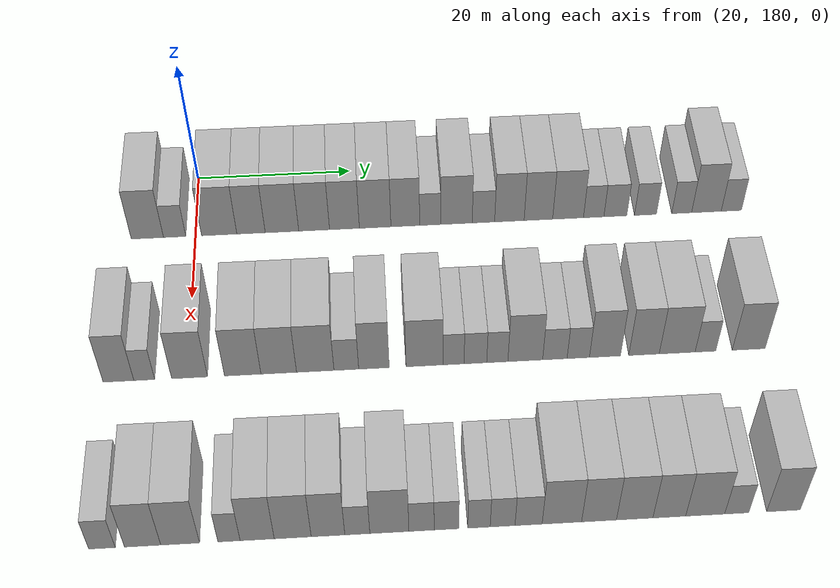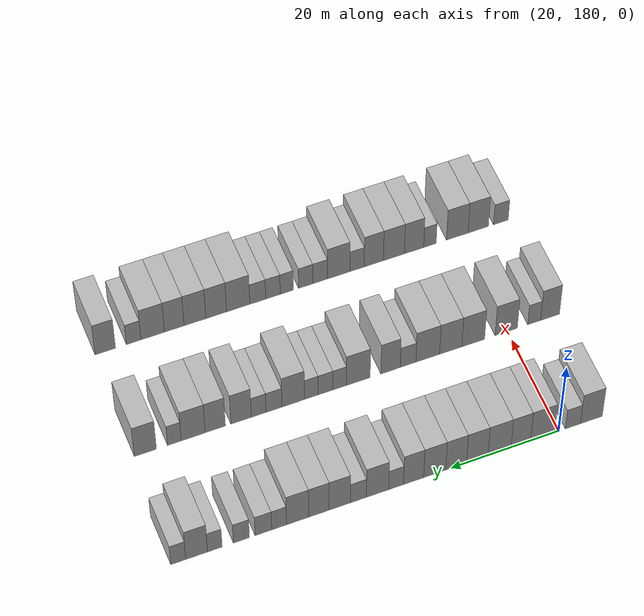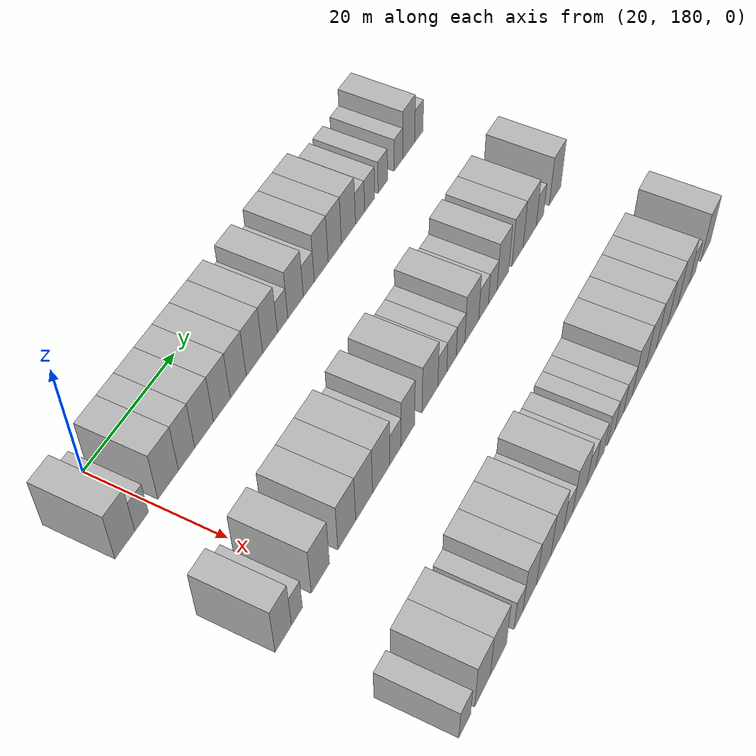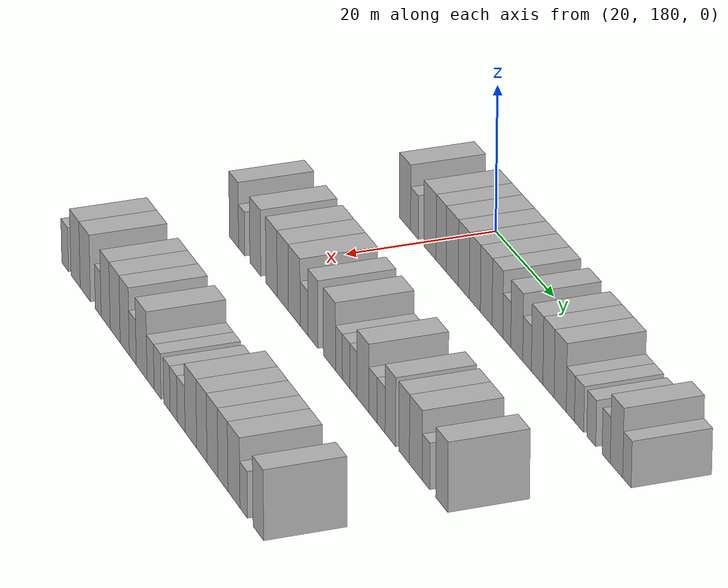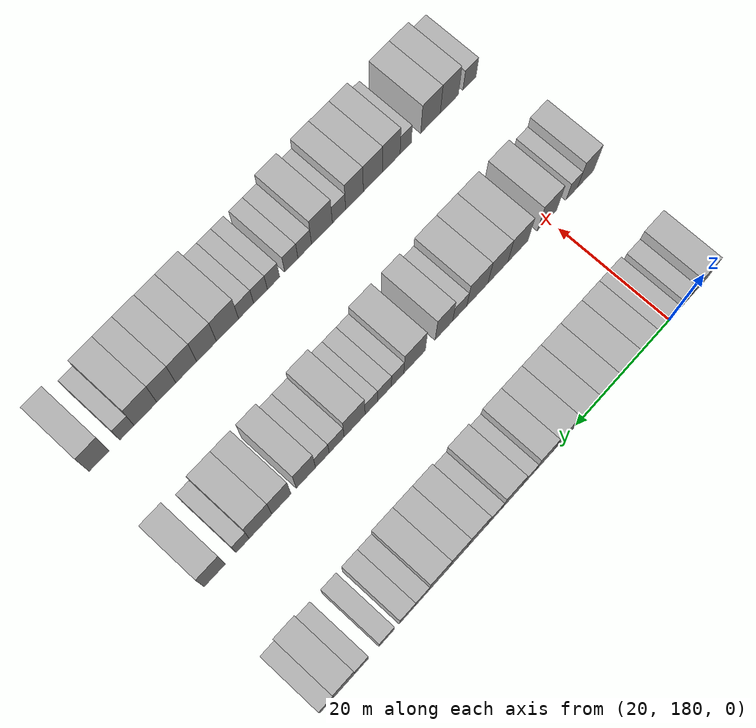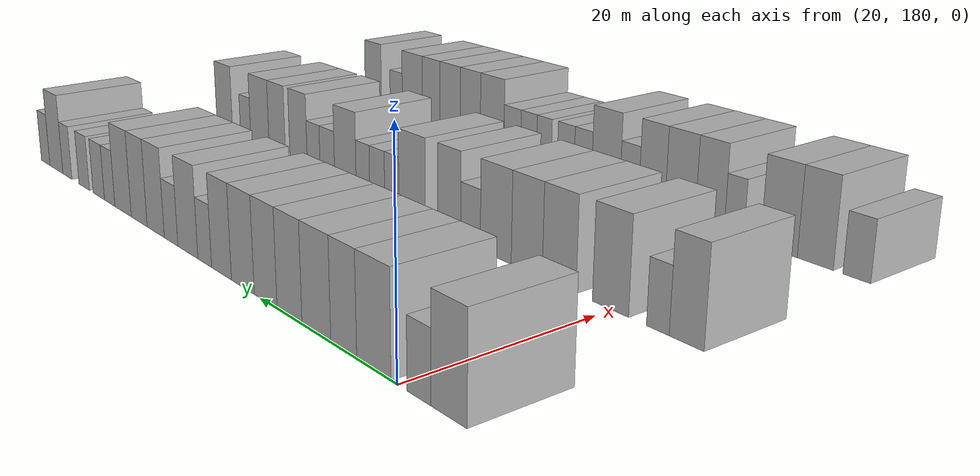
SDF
<sdf version="1.6">
 <world name="default">
  <model name="building_109">
   <static>1</static>
   <pose>25.0000 173.9081 0 0.000000 0.000000 0.000000</pose>
   <link name="link">
    <pose>0 0 4.50 0 0 0</pose>
    <collision name="collision"><geometry><box><size>10.0000 4.0946 9.0000</size></box></geometry></collision>
    <visual name="visual">
     <cast_shadows>0</cast_shadows>
     <geometry><box><size>10.0000 4.0946 9.0000</size></box></geometry>
     <material>
      <script>
       <uri>model://HANNAS_wall/materials/scripts</uri>
       <uri>model://HANNAS_wall/materials/textures</uri>
       <name>vrc/HANNAS_wall</name>
      </script>
     </material>
    </visual>
   </link>
  </model>
  <model name="building_110">
   <static>1</static>
   <pose>25.0000 177.3747 0 0.000000 0.000000 0.000000</pose>
   <link name="link">
    <pose>0 0 3.00 0 0 0</pose>
    <collision name="collision"><geometry><box><size>10.0000 2.8385 6.0000</size></box></geometry></collision>
    <visual name="visual">
     <cast_shadows>0</cast_shadows>
     <geometry><box><size>10.0000 2.8385 6.0000</size></box></geometry>
     <material>
      <script>
       <uri>model://HANNAS_wall/materials/scripts</uri>
       <uri>model://HANNAS_wall/materials/textures</uri>
       <name>vrc/HANNAS_wall</name>
      </script>
     </material>
    </visual>
   </link>
  </model>
  <model name="building_111">
   <static>1</static>
   <pose>25.0000 183.0417 0 0.000000 0.000000 0.000000</pose>
   <link name="link">
    <pose>0 0 4.50 0 0 0</pose>
    <collision name="collision"><geometry><box><size>10.0000 4.4956 9.0000</size></box></geometry></collision>
    <visual name="visual">
     <cast_shadows>0</cast_shadows>
     <geometry><box><size>10.0000 4.4956 9.0000</size></box></geometry>
     <material>
      <script>
       <uri>model://HANNAS_wall/materials/scripts</uri>
       <uri>model://HANNAS_wall/materials/textures</uri>
       <name>vrc/HANNAS_wall</name>
      </script>
     </material>
    </visual>
   </link>
  </model>
  <model name="building_112">
   <static>1</static>
   <pose>25.0000 187.1016 0 0.000000 0.000000 0.000000</pose>
   <link name="link">
    <pose>0 0 4.50 0 0 0</pose>
    <collision name="collision"><geometry><box><size>10.0000 3.6242 9.0000</size></box></geometry></collision>
    <visual name="visual">
     <cast_shadows>0</cast_shadows>
     <geometry><box><size>10.0000 3.6242 9.0000</size></box></geometry>
     <material>
      <script>
       <uri>model://HANNAS_wall/materials/scripts</uri>
       <uri>model://HANNAS_wall/materials/textures</uri>
       <name>vrc/HANNAS_wall</name>
      </script>
     </material>
    </visual>
   </link>
  </model>
  <model name="building_113">
   <static>1</static>
   <pose>25.0000 191.0574 0 0.000000 0.000000 0.000000</pose>
   <link name="link">
    <pose>0 0 4.50 0 0 0</pose>
    <collision name="collision"><geometry><box><size>10.0000 4.2874 9.0000</size></box></geometry></collision>
    <visual name="visual">
     <cast_shadows>0</cast_shadows>
     <geometry><box><size>10.0000 4.2874 9.0000</size></box></geometry>
     <material>
      <script>
       <uri>model://HANNAS_wall/materials/scripts</uri>
       <uri>model://HANNAS_wall/materials/textures</uri>
       <name>vrc/HANNAS_wall</name>
      </script>
     </material>
    </visual>
   </link>
  </model>
  <model name="building_114">
   <static>1</static>
   <pose>25.0000 195.1754 0 0.000000 0.000000 0.000000</pose>
   <link name="link">
    <pose>0 0 4.50 0 0 0</pose>
    <collision name="collision"><geometry><box><size>10.0000 3.9486 9.0000</size></box></geometry></collision>
    <visual name="visual">
     <cast_shadows>0</cast_shadows>
     <geometry><box><size>10.0000 3.9486 9.0000</size></box></geometry>
     <material>
      <script>
       <uri>model://HANNAS_wall/materials/scripts</uri>
       <uri>model://HANNAS_wall/materials/textures</uri>
       <name>vrc/HANNAS_wall</name>
      </script>
     </material>
    </visual>
   </link>
  </model>
  <model name="building_115">
   <static>1</static>
   <pose>25.0000 199.0619 0 0.000000 0.000000 0.000000</pose>
   <link name="link">
    <pose>0 0 4.50 0 0 0</pose>
    <collision name="collision"><geometry><box><size>10.0000 3.8245 9.0000</size></box></geometry></collision>
    <visual name="visual">
     <cast_shadows>0</cast_shadows>
     <geometry><box><size>10.0000 3.8245 9.0000</size></box></geometry>
     <material>
      <script>
       <uri>model://HANNAS_wall/materials/scripts</uri>
       <uri>model://HANNAS_wall/materials/textures</uri>
       <name>vrc/HANNAS_wall</name>
      </script>
     </material>
    </visual>
   </link>
  </model>
  <model name="building_116">
   <static>1</static>
   <pose>25.0000 202.9999 0 0.000000 0.000000 0.000000</pose>
   <link name="link">
    <pose>0 0 4.50 0 0 0</pose>
    <collision name="collision"><geometry><box><size>10.0000 4.0514 9.0000</size></box></geometry></collision>
    <visual name="visual">
     <cast_shadows>0</cast_shadows>
     <geometry><box><size>10.0000 4.0514 9.0000</size></box></geometry>
     <material>
      <script>
       <uri>model://HANNAS_wall/materials/scripts</uri>
       <uri>model://HANNAS_wall/materials/textures</uri>
       <name>vrc/HANNAS_wall</name>
      </script>
     </material>
    </visual>
   </link>
  </model>
  <model name="building_117">
   <static>1</static>
   <pose>25.0000 206.8756 0 0.000000 0.000000 0.000000</pose>
   <link name="link">
    <pose>0 0 4.50 0 0 0</pose>
    <collision name="collision"><geometry><box><size>10.0000 3.7001 9.0000</size></box></geometry></collision>
    <visual name="visual">
     <cast_shadows>0</cast_shadows>
     <geometry><box><size>10.0000 3.7001 9.0000</size></box></geometry>
     <material>
      <script>
       <uri>model://HANNAS_wall/materials/scripts</uri>
       <uri>model://HANNAS_wall/materials/textures</uri>
       <name>vrc/HANNAS_wall</name>
      </script>
     </material>
    </visual>
   </link>
  </model>
  <model name="building_118">
   <static>1</static>
   <pose>25.0000 210.0729 0 0.000000 0.000000 0.000000</pose>
   <link name="link">
    <pose>0 0 3.00 0 0 0</pose>
    <collision name="collision"><geometry><box><size>10.0000 2.6945 6.0000</size></box></geometry></collision>
    <visual name="visual">
     <cast_shadows>0</cast_shadows>
     <geometry><box><size>10.0000 2.6945 6.0000</size></box></geometry>
     <material>
      <script>
       <uri>model://HANNAS_wall/materials/scripts</uri>
       <uri>model://HANNAS_wall/materials/textures</uri>
       <name>vrc/HANNAS_wall</name>
      </script>
     </material>
    </visual>
   </link>
  </model>
  <model name="building_119">
   <static>1</static>
   <pose>25.0000 213.4581 0 0.000000 0.000000 0.000000</pose>
   <link name="link">
    <pose>0 0 4.50 0 0 0</pose>
    <collision name="collision"><geometry><box><size>10.0000 4.0759 9.0000</size></box></geometry></collision>
    <visual name="visual">
     <cast_shadows>0</cast_shadows>
     <geometry><box><size>10.0000 4.0759 9.0000</size></box></geometry>
     <material>
      <script>
       <uri>model://HANNAS_wall/materials/scripts</uri>
       <uri>model://HANNAS_wall/materials/textures</uri>
       <name>vrc/HANNAS_wall</name>
      </script>
     </material>
    </visual>
   </link>
  </model>
  <model name="building_120">
   <static>1</static>
   <pose>25.0000 216.9453 0 0.000000 0.000000 0.000000</pose>
   <link name="link">
    <pose>0 0 3.00 0 0 0</pose>
    <collision name="collision"><geometry><box><size>10.0000 2.8984 6.0000</size></box></geometry></collision>
    <visual name="visual">
     <cast_shadows>0</cast_shadows>
     <geometry><box><size>10.0000 2.8984 6.0000</size></box></geometry>
     <material>
      <script>
       <uri>model://HANNAS_wall/materials/scripts</uri>
       <uri>model://HANNAS_wall/materials/textures</uri>
       <name>vrc/HANNAS_wall</name>
      </script>
     </material>
    </visual>
   </link>
  </model>
  <model name="building_121">
   <static>1</static>
   <pose>25.0000 220.3004 0 0.000000 0.000000 0.000000</pose>
   <link name="link">
    <pose>0 0 4.50 0 0 0</pose>
    <collision name="collision"><geometry><box><size>10.0000 3.8117 9.0000</size></box></geometry></collision>
    <visual name="visual">
     <cast_shadows>0</cast_shadows>
     <geometry><box><size>10.0000 3.8117 9.0000</size></box></geometry>
     <material>
      <script>
       <uri>model://HANNAS_wall/materials/scripts</uri>
       <uri>model://HANNAS_wall/materials/textures</uri>
       <name>vrc/HANNAS_wall</name>
      </script>
     </material>
    </visual>
   </link>
  </model>
  <model name="building_122">
   <static>1</static>
   <pose>25.0000 224.0558 0 0.000000 0.000000 0.000000</pose>
   <link name="link">
    <pose>0 0 4.50 0 0 0</pose>
    <collision name="collision"><geometry><box><size>10.0000 3.6991 9.0000</size></box></geometry></collision>
    <visual name="visual">
     <cast_shadows>0</cast_shadows>
     <geometry><box><size>10.0000 3.6991 9.0000</size></box></geometry>
     <material>
      <script>
       <uri>model://HANNAS_wall/materials/scripts</uri>
       <uri>model://HANNAS_wall/materials/textures</uri>
       <name>vrc/HANNAS_wall</name>
      </script>
     </material>
    </visual>
   </link>
  </model>
  <model name="building_123">
   <static>1</static>
   <pose>25.0000 227.9066 0 0.000000 0.000000 0.000000</pose>
   <link name="link">
    <pose>0 0 4.50 0 0 0</pose>
    <collision name="collision"><geometry><box><size>10.0000 4.0026 9.0000</size></box></geometry></collision>
    <visual name="visual">
     <cast_shadows>0</cast_shadows>
     <geometry><box><size>10.0000 4.0026 9.0000</size></box></geometry>
     <material>
      <script>
       <uri>model://HANNAS_wall/materials/scripts</uri>
       <uri>model://HANNAS_wall/materials/textures</uri>
       <name>vrc/HANNAS_wall</name>
      </script>
     </material>
    </visual>
   </link>
  </model>
  <model name="building_124">
   <static>1</static>
   <pose>25.0000 231.2345 0 0.000000 0.000000 0.000000</pose>
   <link name="link">
    <pose>0 0 3.00 0 0 0</pose>
    <collision name="collision"><geometry><box><size>10.0000 2.6533 6.0000</size></box></geometry></collision>
    <visual name="visual">
     <cast_shadows>0</cast_shadows>
     <geometry><box><size>10.0000 2.6533 6.0000</size></box></geometry>
     <material>
      <script>
       <uri>model://HANNAS_wall/materials/scripts</uri>
       <uri>model://HANNAS_wall/materials/textures</uri>
       <name>vrc/HANNAS_wall</name>
      </script>
     </material>
    </visual>
   </link>
  </model>
  <model name="building_125">
   <static>1</static>
   <pose>25.0000 234.0508 0 0.000000 0.000000 0.000000</pose>
   <link name="link">
    <pose>0 0 3.00 0 0 0</pose>
    <collision name="collision"><geometry><box><size>10.0000 2.9793 6.0000</size></box></geometry></collision>
    <visual name="visual">
     <cast_shadows>0</cast_shadows>
     <geometry><box><size>10.0000 2.9793 6.0000</size></box></geometry>
     <material>
      <script>
       <uri>model://HANNAS_wall/materials/scripts</uri>
       <uri>model://HANNAS_wall/materials/textures</uri>
       <name>vrc/HANNAS_wall</name>
      </script>
     </material>
    </visual>
   </link>
  </model>
  <model name="building_126">
   <static>1</static>
   <pose>25.0000 237.9720 0 0.000000 0.000000 0.000000</pose>
   <link name="link">
    <pose>0 0 3.00 0 0 0</pose>
    <collision name="collision"><geometry><box><size>10.0000 2.8631 6.0000</size></box></geometry></collision>
    <visual name="visual">
     <cast_shadows>0</cast_shadows>
     <geometry><box><size>10.0000 2.8631 6.0000</size></box></geometry>
     <material>
      <script>
       <uri>model://HANNAS_wall/materials/scripts</uri>
       <uri>model://HANNAS_wall/materials/textures</uri>
       <name>vrc/HANNAS_wall</name>
      </script>
     </material>
    </visual>
   </link>
  </model>
  <model name="building_127">
   <static>1</static>
   <pose>25.0000 242.7016 0 0.000000 0.000000 0.000000</pose>
   <link name="link">
    <pose>0 0 3.00 0 0 0</pose>
    <collision name="collision"><geometry><box><size>10.0000 2.5960 6.0000</size></box></geometry></collision>
    <visual name="visual">
     <cast_shadows>0</cast_shadows>
     <geometry><box><size>10.0000 2.5960 6.0000</size></box></geometry>
     <material>
      <script>
       <uri>model://HANNAS_wall/materials/scripts</uri>
       <uri>model://HANNAS_wall/materials/textures</uri>
       <name>vrc/HANNAS_wall</name>
      </script>
     </material>
    </visual>
   </link>
  </model>
  <model name="building_128">
   <static>1</static>
   <pose>25.0000 245.9337 0 0.000000 0.000000 0.000000</pose>
   <link name="link">
    <pose>0 0 4.50 0 0 0</pose>
    <collision name="collision"><geometry><box><size>10.0000 3.8683 9.0000</size></box></geometry></collision>
    <visual name="visual">
     <cast_shadows>0</cast_shadows>
     <geometry><box><size>10.0000 3.8683 9.0000</size></box></geometry>
     <material>
      <script>
       <uri>model://HANNAS_wall/materials/scripts</uri>
       <uri>model://HANNAS_wall/materials/textures</uri>
       <name>vrc/HANNAS_wall</name>
      </script>
     </material>
    </visual>
   </link>
  </model>
  <model name="building_129">
   <static>1</static>
   <pose>25.0000 249.1870 0 0.000000 0.000000 0.000000</pose>
   <link name="link">
    <pose>0 0 3.00 0 0 0</pose>
    <collision name="collision"><geometry><box><size>10.0000 2.6382 6.0000</size></box></geometry></collision>
    <visual name="visual">
     <cast_shadows>0</cast_shadows>
     <geometry><box><size>10.0000 2.6382 6.0000</size></box></geometry>
     <material>
      <script>
       <uri>model://HANNAS_wall/materials/scripts</uri>
       <uri>model://HANNAS_wall/materials/textures</uri>
       <name>vrc/HANNAS_wall</name>
      </script>
     </material>
    </visual>
   </link>
  </model>
  <model name="building_231">
   <static>1</static>
   <pose>47.0000 171.8730 0 0.000000 0.000000 0.000000</pose>
   <link name="link">
    <pose>0 0 4.50 0 0 0</pose>
    <collision name="collision"><geometry><box><size>10.0000 3.6112 9.0000</size></box></geometry></collision>
    <visual name="visual">
     <cast_shadows>0</cast_shadows>
     <geometry><box><size>10.0000 3.6112 9.0000</size></box></geometry>
     <material>
      <script>
       <uri>model://HANNAS_wall/materials/scripts</uri>
       <uri>model://HANNAS_wall/materials/textures</uri>
       <name>vrc/HANNAS_wall</name>
      </script>
     </material>
    </visual>
   </link>
  </model>
  <model name="building_232">
   <static>1</static>
   <pose>47.0000 174.9050 0 0.000000 0.000000 0.000000</pose>
   <link name="link">
    <pose>0 0 3.00 0 0 0</pose>
    <collision name="collision"><geometry><box><size>10.0000 2.4529 6.0000</size></box></geometry></collision>
    <visual name="visual">
     <cast_shadows>0</cast_shadows>
     <geometry><box><size>10.0000 2.4529 6.0000</size></box></geometry>
     <material>
      <script>
       <uri>model://HANNAS_wall/materials/scripts</uri>
       <uri>model://HANNAS_wall/materials/textures</uri>
       <name>vrc/HANNAS_wall</name>
      </script>
     </material>
    </visual>
   </link>
  </model>
  <model name="building_233">
   <static>1</static>
   <pose>47.0000 180.2463 0 0.000000 0.000000 0.000000</pose>
   <link name="link">
    <pose>0 0 4.50 0 0 0</pose>
    <collision name="collision"><geometry><box><size>10.0000 4.2296 9.0000</size></box></geometry></collision>
    <visual name="visual">
     <cast_shadows>0</cast_shadows>
     <geometry><box><size>10.0000 4.2296 9.0000</size></box></geometry>
     <material>
      <script>
       <uri>model://HANNAS_wall/materials/scripts</uri>
       <uri>model://HANNAS_wall/materials/textures</uri>
       <name>vrc/HANNAS_wall</name>
      </script>
     </material>
    </visual>
   </link>
  </model>
  <model name="building_234">
   <static>1</static>
   <pose>47.0000 186.5187 0 0.000000 0.000000 0.000000</pose>
   <link name="link">
    <pose>0 0 4.50 0 0 0</pose>
    <collision name="collision"><geometry><box><size>10.0000 4.3152 9.0000</size></box></geometry></collision>
    <visual name="visual">
     <cast_shadows>0</cast_shadows>
     <geometry><box><size>10.0000 4.3152 9.0000</size></box></geometry>
     <material>
      <script>
       <uri>model://HANNAS_wall/materials/scripts</uri>
       <uri>model://HANNAS_wall/materials/textures</uri>
       <name>vrc/HANNAS_wall</name>
      </script>
     </material>
    </visual>
   </link>
  </model>
  <model name="building_235">
   <static>1</static>
   <pose>47.0000 190.7819 0 0.000000 0.000000 0.000000</pose>
   <link name="link">
    <pose>0 0 4.50 0 0 0</pose>
    <collision name="collision"><geometry><box><size>10.0000 4.2111 9.0000</size></box></geometry></collision>
    <visual name="visual">
     <cast_shadows>0</cast_shadows>
     <geometry><box><size>10.0000 4.2111 9.0000</size></box></geometry>
     <material>
      <script>
       <uri>model://HANNAS_wall/materials/scripts</uri>
       <uri>model://HANNAS_wall/materials/textures</uri>
       <name>vrc/HANNAS_wall</name>
      </script>
     </material>
    </visual>
   </link>
  </model>
  <model name="building_236">
   <static>1</static>
   <pose>47.0000 195.1106 0 0.000000 0.000000 0.000000</pose>
   <link name="link">
    <pose>0 0 4.50 0 0 0</pose>
    <collision name="collision"><geometry><box><size>10.0000 4.4464 9.0000</size></box></geometry></collision>
    <visual name="visual">
     <cast_shadows>0</cast_shadows>
     <geometry><box><size>10.0000 4.4464 9.0000</size></box></geometry>
     <material>
      <script>
       <uri>model://HANNAS_wall/materials/scripts</uri>
       <uri>model://HANNAS_wall/materials/textures</uri>
       <name>vrc/HANNAS_wall</name>
      </script>
     </material>
    </visual>
   </link>
  </model>
  <model name="building_237">
   <static>1</static>
   <pose>47.0000 198.8023 0 0.000000 0.000000 0.000000</pose>
   <link name="link">
    <pose>0 0 3.00 0 0 0</pose>
    <collision name="collision"><geometry><box><size>10.0000 2.9369 6.0000</size></box></geometry></collision>
    <visual name="visual">
     <cast_shadows>0</cast_shadows>
     <geometry><box><size>10.0000 2.9369 6.0000</size></box></geometry>
     <material>
      <script>
       <uri>model://HANNAS_wall/materials/scripts</uri>
       <uri>model://HANNAS_wall/materials/textures</uri>
       <name>vrc/HANNAS_wall</name>
      </script>
     </material>
    </visual>
   </link>
  </model>
  <model name="building_238">
   <static>1</static>
   <pose>47.0000 202.0875 0 0.000000 0.000000 0.000000</pose>
   <link name="link">
    <pose>0 0 4.50 0 0 0</pose>
    <collision name="collision"><geometry><box><size>10.0000 3.6337 9.0000</size></box></geometry></collision>
    <visual name="visual">
     <cast_shadows>0</cast_shadows>
     <geometry><box><size>10.0000 3.6337 9.0000</size></box></geometry>
     <material>
      <script>
       <uri>model://HANNAS_wall/materials/scripts</uri>
       <uri>model://HANNAS_wall/materials/textures</uri>
       <name>vrc/HANNAS_wall</name>
      </script>
     </material>
    </visual>
   </link>
  </model>
  <model name="building_239">
   <static>1</static>
   <pose>47.0000 208.1140 0 0.000000 0.000000 0.000000</pose>
   <link name="link">
    <pose>0 0 4.50 0 0 0</pose>
    <collision name="collision"><geometry><box><size>10.0000 4.4192 9.0000</size></box></geometry></collision>
    <visual name="visual">
     <cast_shadows>0</cast_shadows>
     <geometry><box><size>10.0000 4.4192 9.0000</size></box></geometry>
     <material>
      <script>
       <uri>model://HANNAS_wall/materials/scripts</uri>
       <uri>model://HANNAS_wall/materials/textures</uri>
       <name>vrc/HANNAS_wall</name>
      </script>
     </material>
    </visual>
   </link>
  </model>
  <model name="building_240">
   <static>1</static>
   <pose>47.0000 211.5785 0 0.000000 0.000000 0.000000</pose>
   <link name="link">
    <pose>0 0 3.00 0 0 0</pose>
    <collision name="collision"><geometry><box><size>10.0000 2.5098 6.0000</size></box></geometry></collision>
    <visual name="visual">
     <cast_shadows>0</cast_shadows>
     <geometry><box><size>10.0000 2.5098 6.0000</size></box></geometry>
     <material>
      <script>
       <uri>model://HANNAS_wall/materials/scripts</uri>
       <uri>model://HANNAS_wall/materials/textures</uri>
       <name>vrc/HANNAS_wall</name>
      </script>
     </material>
    </visual>
   </link>
  </model>
  <model name="building_241">
   <static>1</static>
   <pose>47.0000 214.1913 0 0.000000 0.000000 0.000000</pose>
   <link name="link">
    <pose>0 0 3.00 0 0 0</pose>
    <collision name="collision"><geometry><box><size>10.0000 2.7160 6.0000</size></box></geometry></collision>
    <visual name="visual">
     <cast_shadows>0</cast_shadows>
     <geometry><box><size>10.0000 2.7160 6.0000</size></box></geometry>
     <material>
      <script>
       <uri>model://HANNAS_wall/materials/scripts</uri>
       <uri>model://HANNAS_wall/materials/textures</uri>
       <name>vrc/HANNAS_wall</name>
      </script>
     </material>
    </visual>
   </link>
  </model>
  <model name="building_242">
   <static>1</static>
   <pose>47.0000 216.8165 0 0.000000 0.000000 0.000000</pose>
   <link name="link">
    <pose>0 0 3.00 0 0 0</pose>
    <collision name="collision"><geometry><box><size>10.0000 2.5343 6.0000</size></box></geometry></collision>
    <visual name="visual">
     <cast_shadows>0</cast_shadows>
     <geometry><box><size>10.0000 2.5343 6.0000</size></box></geometry>
     <material>
      <script>
       <uri>model://HANNAS_wall/materials/scripts</uri>
       <uri>model://HANNAS_wall/materials/textures</uri>
       <name>vrc/HANNAS_wall</name>
      </script>
     </material>
    </visual>
   </link>
  </model>
  <model name="building_243">
   <static>1</static>
   <pose>47.0000 220.1700 0 0.000000 0.000000 0.000000</pose>
   <link name="link">
    <pose>0 0 4.50 0 0 0</pose>
    <collision name="collision"><geometry><box><size>10.0000 4.1727 9.0000</size></box></geometry></collision>
    <visual name="visual">
     <cast_shadows>0</cast_shadows>
     <geometry><box><size>10.0000 4.1727 9.0000</size></box></geometry>
     <material>
      <script>
       <uri>model://HANNAS_wall/materials/scripts</uri>
       <uri>model://HANNAS_wall/materials/textures</uri>
       <name>vrc/HANNAS_wall</name>
      </script>
     </material>
    </visual>
   </link>
  </model>
  <model name="building_244">
   <static>1</static>
   <pose>47.0000 223.7242 0 0.000000 0.000000 0.000000</pose>
   <link name="link">
    <pose>0 0 3.00 0 0 0</pose>
    <collision name="collision"><geometry><box><size>10.0000 2.9358 6.0000</size></box></geometry></collision>
    <visual name="visual">
     <cast_shadows>0</cast_shadows>
     <geometry><box><size>10.0000 2.9358 6.0000</size></box></geometry>
     <material>
      <script>
       <uri>model://HANNAS_wall/materials/scripts</uri>
       <uri>model://HANNAS_wall/materials/textures</uri>
       <name>vrc/HANNAS_wall</name>
      </script>
     </material>
    </visual>
   </link>
  </model>
  <model name="building_245">
   <static>1</static>
   <pose>47.0000 226.5375 0 0.000000 0.000000 0.000000</pose>
   <link name="link">
    <pose>0 0 3.00 0 0 0</pose>
    <collision name="collision"><geometry><box><size>10.0000 2.6907 6.0000</size></box></geometry></collision>
    <visual name="visual">
     <cast_shadows>0</cast_shadows>
     <geometry><box><size>10.0000 2.6907 6.0000</size></box></geometry>
     <material>
      <script>
       <uri>model://HANNAS_wall/materials/scripts</uri>
       <uri>model://HANNAS_wall/materials/textures</uri>
       <name>vrc/HANNAS_wall</name>
      </script>
     </material>
    </visual>
   </link>
  </model>
  <model name="building_246">
   <static>1</static>
   <pose>47.0000 229.7538 0 0.000000 0.000000 0.000000</pose>
   <link name="link">
    <pose>0 0 4.50 0 0 0</pose>
    <collision name="collision"><geometry><box><size>10.0000 3.7419 9.0000</size></box></geometry></collision>
    <visual name="visual">
     <cast_shadows>0</cast_shadows>
     <geometry><box><size>10.0000 3.7419 9.0000</size></box></geometry>
     <material>
      <script>
       <uri>model://HANNAS_wall/materials/scripts</uri>
       <uri>model://HANNAS_wall/materials/textures</uri>
       <name>vrc/HANNAS_wall</name>
      </script>
     </material>
    </visual>
   </link>
  </model>
  <model name="building_247">
   <static>1</static>
   <pose>47.0000 234.4644 0 0.000000 0.000000 0.000000</pose>
   <link name="link">
    <pose>0 0 4.50 0 0 0</pose>
    <collision name="collision"><geometry><box><size>10.0000 3.6793 9.0000</size></box></geometry></collision>
    <visual name="visual">
     <cast_shadows>0</cast_shadows>
     <geometry><box><size>10.0000 3.6793 9.0000</size></box></geometry>
     <material>
      <script>
       <uri>model://HANNAS_wall/materials/scripts</uri>
       <uri>model://HANNAS_wall/materials/textures</uri>
       <name>vrc/HANNAS_wall</name>
      </script>
     </material>
    </visual>
   </link>
  </model>
  <model name="building_248">
   <static>1</static>
   <pose>47.0000 238.4772 0 0.000000 0.000000 0.000000</pose>
   <link name="link">
    <pose>0 0 4.50 0 0 0</pose>
    <collision name="collision"><geometry><box><size>10.0000 4.3463 9.0000</size></box></geometry></collision>
    <visual name="visual">
     <cast_shadows>0</cast_shadows>
     <geometry><box><size>10.0000 4.3463 9.0000</size></box></geometry>
     <material>
      <script>
       <uri>model://HANNAS_wall/materials/scripts</uri>
       <uri>model://HANNAS_wall/materials/textures</uri>
       <name>vrc/HANNAS_wall</name>
      </script>
     </material>
    </visual>
   </link>
  </model>
  <model name="building_249">
   <static>1</static>
   <pose>47.0000 241.8988 0 0.000000 0.000000 0.000000</pose>
   <link name="link">
    <pose>0 0 3.00 0 0 0</pose>
    <collision name="collision"><geometry><box><size>10.0000 2.4970 6.0000</size></box></geometry></collision>
    <visual name="visual">
     <cast_shadows>0</cast_shadows>
     <geometry><box><size>10.0000 2.4970 6.0000</size></box></geometry>
     <material>
      <script>
       <uri>model://HANNAS_wall/materials/scripts</uri>
       <uri>model://HANNAS_wall/materials/textures</uri>
       <name>vrc/HANNAS_wall</name>
      </script>
     </material>
    </visual>
   </link>
  </model>
  <model name="building_250">
   <static>1</static>
   <pose>47.0000 247.1451 0 0.000000 0.000000 0.000000</pose>
   <link name="link">
    <pose>0 0 4.50 0 0 0</pose>
    <collision name="collision"><geometry><box><size>10.0000 3.9956 9.0000</size></box></geometry></collision>
    <visual name="visual">
     <cast_shadows>0</cast_shadows>
     <geometry><box><size>10.0000 3.9956 9.0000</size></box></geometry>
     <material>
      <script>
       <uri>model://HANNAS_wall/materials/scripts</uri>
       <uri>model://HANNAS_wall/materials/textures</uri>
       <name>vrc/HANNAS_wall</name>
      </script>
     </material>
    </visual>
   </link>
  </model>
  <model name="building_354">
   <static>1</static>
   <pose>69.0000 171.7245 0 0.000000 0.000000 0.000000</pose>
   <link name="link">
    <pose>0 0 3.00 0 0 0</pose>
    <collision name="collision"><geometry><box><size>10.0000 2.8645 6.0000</size></box></geometry></collision>
    <visual name="visual">
     <cast_shadows>0</cast_shadows>
     <geometry><box><size>10.0000 2.8645 6.0000</size></box></geometry>
     <material>
      <script>
       <uri>model://HANNAS_wall/materials/scripts</uri>
       <uri>model://HANNAS_wall/materials/textures</uri>
       <name>vrc/HANNAS_wall</name>
      </script>
     </material>
    </visual>
   </link>
  </model>
  <model name="building_355">
   <static>1</static>
   <pose>69.0000 176.1221 0 0.000000 0.000000 0.000000</pose>
   <link name="link">
    <pose>0 0 4.50 0 0 0</pose>
    <collision name="collision"><geometry><box><size>10.0000 3.9307 9.0000</size></box></geometry></collision>
    <visual name="visual">
     <cast_shadows>0</cast_shadows>
     <geometry><box><size>10.0000 3.9307 9.0000</size></box></geometry>
     <material>
      <script>
       <uri>model://HANNAS_wall/materials/scripts</uri>
       <uri>model://HANNAS_wall/materials/textures</uri>
       <name>vrc/HANNAS_wall</name>
      </script>
     </material>
    </visual>
   </link>
  </model>
  <model name="building_356">
   <static>1</static>
   <pose>69.0000 180.1923 0 0.000000 0.000000 0.000000</pose>
   <link name="link">
    <pose>0 0 4.50 0 0 0</pose>
    <collision name="collision"><geometry><box><size>10.0000 4.2099 9.0000</size></box></geometry></collision>
    <visual name="visual">
     <cast_shadows>0</cast_shadows>
     <geometry><box><size>10.0000 4.2099 9.0000</size></box></geometry>
     <material>
      <script>
       <uri>model://HANNAS_wall/materials/scripts</uri>
       <uri>model://HANNAS_wall/materials/textures</uri>
       <name>vrc/HANNAS_wall</name>
      </script>
     </material>
    </visual>
   </link>
  </model>
  <model name="building_357">
   <static>1</static>
   <pose>69.0000 185.5039 0 0.000000 0.000000 0.000000</pose>
   <link name="link">
    <pose>0 0 3.00 0 0 0</pose>
    <collision name="collision"><geometry><box><size>10.0000 2.4132 6.0000</size></box></geometry></collision>
    <visual name="visual">
     <cast_shadows>0</cast_shadows>
     <geometry><box><size>10.0000 2.4132 6.0000</size></box></geometry>
     <material>
      <script>
       <uri>model://HANNAS_wall/materials/scripts</uri>
       <uri>model://HANNAS_wall/materials/textures</uri>
       <name>vrc/HANNAS_wall</name>
      </script>
     </material>
    </visual>
   </link>
  </model>
  <model name="building_358">
   <static>1</static>
   <pose>69.0000 188.5656 0 0.000000 0.000000 0.000000</pose>
   <link name="link">
    <pose>0 0 4.50 0 0 0</pose>
    <collision name="collision"><geometry><box><size>10.0000 3.7101 9.0000</size></box></geometry></collision>
    <visual name="visual">
     <cast_shadows>0</cast_shadows>
     <geometry><box><size>10.0000 3.7101 9.0000</size></box></geometry>
     <material>
      <script>
       <uri>model://HANNAS_wall/materials/scripts</uri>
       <uri>model://HANNAS_wall/materials/textures</uri>
       <name>vrc/HANNAS_wall</name>
      </script>
     </material>
    </visual>
   </link>
  </model>
  <model name="building_359">
   <static>1</static>
   <pose>69.0000 192.4403 0 0.000000 0.000000 0.000000</pose>
   <link name="link">
    <pose>0 0 4.50 0 0 0</pose>
    <collision name="collision"><geometry><box><size>10.0000 4.0394 9.0000</size></box></geometry></collision>
    <visual name="visual">
     <cast_shadows>0</cast_shadows>
     <geometry><box><size>10.0000 4.0394 9.0000</size></box></geometry>
     <material>
      <script>
       <uri>model://HANNAS_wall/materials/scripts</uri>
       <uri>model://HANNAS_wall/materials/textures</uri>
       <name>vrc/HANNAS_wall</name>
      </script>
     </material>
    </visual>
   </link>
  </model>
  <model name="building_360">
   <static>1</static>
   <pose>69.0000 196.2982 0 0.000000 0.000000 0.000000</pose>
   <link name="link">
    <pose>0 0 4.50 0 0 0</pose>
    <collision name="collision"><geometry><box><size>10.0000 3.6764 9.0000</size></box></geometry></collision>
    <visual name="visual">
     <cast_shadows>0</cast_shadows>
     <geometry><box><size>10.0000 3.6764 9.0000</size></box></geometry>
     <material>
      <script>
       <uri>model://HANNAS_wall/materials/scripts</uri>
       <uri>model://HANNAS_wall/materials/textures</uri>
       <name>vrc/HANNAS_wall</name>
      </script>
     </material>
    </visual>
   </link>
  </model>
  <model name="building_361">
   <static>1</static>
   <pose>69.0000 199.5074 0 0.000000 0.000000 0.000000</pose>
   <link name="link">
    <pose>0 0 3.00 0 0 0</pose>
    <collision name="collision"><geometry><box><size>10.0000 2.7420 6.0000</size></box></geometry></collision>
    <visual name="visual">
     <cast_shadows>0</cast_shadows>
     <geometry><box><size>10.0000 2.7420 6.0000</size></box></geometry>
     <material>
      <script>
       <uri>model://HANNAS_wall/materials/scripts</uri>
       <uri>model://HANNAS_wall/materials/textures</uri>
       <name>vrc/HANNAS_wall</name>
      </script>
     </material>
    </visual>
   </link>
  </model>
  <model name="building_362">
   <static>1</static>
   <pose>69.0000 203.0169 0 0.000000 0.000000 0.000000</pose>
   <link name="link">
    <pose>0 0 4.50 0 0 0</pose>
    <collision name="collision"><geometry><box><size>10.0000 4.2769 9.0000</size></box></geometry></collision>
    <visual name="visual">
     <cast_shadows>0</cast_shadows>
     <geometry><box><size>10.0000 4.2769 9.0000</size></box></geometry>
     <material>
      <script>
       <uri>model://HANNAS_wall/materials/scripts</uri>
       <uri>model://HANNAS_wall/materials/textures</uri>
       <name>vrc/HANNAS_wall</name>
      </script>
     </material>
    </visual>
   </link>
  </model>
  <model name="building_363">
   <static>1</static>
   <pose>69.0000 206.5429 0 0.000000 0.000000 0.000000</pose>
   <link name="link">
    <pose>0 0 3.00 0 0 0</pose>
    <collision name="collision"><geometry><box><size>10.0000 2.7752 6.0000</size></box></geometry></collision>
    <visual name="visual">
     <cast_shadows>0</cast_shadows>
     <geometry><box><size>10.0000 2.7752 6.0000</size></box></geometry>
     <material>
      <script>
       <uri>model://HANNAS_wall/materials/scripts</uri>
       <uri>model://HANNAS_wall/materials/textures</uri>
       <name>vrc/HANNAS_wall</name>
      </script>
     </material>
    </visual>
   </link>
  </model>
  <model name="building_364">
   <static>1</static>
   <pose>69.0000 209.2831 0 0.000000 0.000000 0.000000</pose>
   <link name="link">
    <pose>0 0 3.00 0 0 0</pose>
    <collision name="collision"><geometry><box><size>10.0000 2.7051 6.0000</size></box></geometry></collision>
    <visual name="visual">
     <cast_shadows>0</cast_shadows>
     <geometry><box><size>10.0000 2.7051 6.0000</size></box></geometry>
     <material>
      <script>
       <uri>model://HANNAS_wall/materials/scripts</uri>
       <uri>model://HANNAS_wall/materials/textures</uri>
       <name>vrc/HANNAS_wall</name>
      </script>
     </material>
    </visual>
   </link>
  </model>
  <model name="building_365">
   <static>1</static>
   <pose>69.0000 212.8709 0 0.000000 0.000000 0.000000</pose>
   <link name="link">
    <pose>0 0 3.00 0 0 0</pose>
    <collision name="collision"><geometry><box><size>10.0000 2.4704 6.0000</size></box></geometry></collision>
    <visual name="visual">
     <cast_shadows>0</cast_shadows>
     <geometry><box><size>10.0000 2.4704 6.0000</size></box></geometry>
     <material>
      <script>
       <uri>model://HANNAS_wall/materials/scripts</uri>
       <uri>model://HANNAS_wall/materials/textures</uri>
       <name>vrc/HANNAS_wall</name>
      </script>
     </material>
    </visual>
   </link>
  </model>
  <model name="building_366">
   <static>1</static>
   <pose>69.0000 215.4762 0 0.000000 0.000000 0.000000</pose>
   <link name="link">
    <pose>0 0 3.00 0 0 0</pose>
    <collision name="collision"><geometry><box><size>10.0000 2.7403 6.0000</size></box></geometry></collision>
    <visual name="visual">
     <cast_shadows>0</cast_shadows>
     <geometry><box><size>10.0000 2.7403 6.0000</size></box></geometry>
     <material>
      <script>
       <uri>model://HANNAS_wall/materials/scripts</uri>
       <uri>model://HANNAS_wall/materials/textures</uri>
       <name>vrc/HANNAS_wall</name>
      </script>
     </material>
    </visual>
   </link>
  </model>
  <model name="building_367">
   <static>1</static>
   <pose>69.0000 218.3457 0 0.000000 0.000000 0.000000</pose>
   <link name="link">
    <pose>0 0 3.00 0 0 0</pose>
    <collision name="collision"><geometry><box><size>10.0000 2.9986 6.0000</size></box></geometry></collision>
    <visual name="visual">
     <cast_shadows>0</cast_shadows>
     <geometry><box><size>10.0000 2.9986 6.0000</size></box></geometry>
     <material>
      <script>
       <uri>model://HANNAS_wall/materials/scripts</uri>
       <uri>model://HANNAS_wall/materials/textures</uri>
       <name>vrc/HANNAS_wall</name>
      </script>
     </material>
    </visual>
   </link>
  </model>
  <model name="building_368">
   <static>1</static>
   <pose>69.0000 222.0311 0 0.000000 0.000000 0.000000</pose>
   <link name="link">
    <pose>0 0 4.50 0 0 0</pose>
    <collision name="collision"><geometry><box><size>10.0000 4.3724 9.0000</size></box></geometry></collision>
    <visual name="visual">
     <cast_shadows>0</cast_shadows>
     <geometry><box><size>10.0000 4.3724 9.0000</size></box></geometry>
     <material>
      <script>
       <uri>model://HANNAS_wall/materials/scripts</uri>
       <uri>model://HANNAS_wall/materials/textures</uri>
       <name>vrc/HANNAS_wall</name>
      </script>
     </material>
    </visual>
   </link>
  </model>
  <model name="building_369">
   <static>1</static>
   <pose>69.0000 226.1497 0 0.000000 0.000000 0.000000</pose>
   <link name="link">
    <pose>0 0 4.50 0 0 0</pose>
    <collision name="collision"><geometry><box><size>10.0000 3.8647 9.0000</size></box></geometry></collision>
    <visual name="visual">
     <cast_shadows>0</cast_shadows>
     <geometry><box><size>10.0000 3.8647 9.0000</size></box></geometry>
     <material>
      <script>
       <uri>model://HANNAS_wall/materials/scripts</uri>
       <uri>model://HANNAS_wall/materials/textures</uri>
       <name>vrc/HANNAS_wall</name>
      </script>
     </material>
    </visual>
   </link>
  </model>
  <model name="building_370">
   <static>1</static>
   <pose>69.0000 230.1087 0 0.000000 0.000000 0.000000</pose>
   <link name="link">
    <pose>0 0 4.50 0 0 0</pose>
    <collision name="collision"><geometry><box><size>10.0000 4.0533 9.0000</size></box></geometry></collision>
    <visual name="visual">
     <cast_shadows>0</cast_shadows>
     <geometry><box><size>10.0000 4.0533 9.0000</size></box></geometry>
     <material>
      <script>
       <uri>model://HANNAS_wall/materials/scripts</uri>
       <uri>model://HANNAS_wall/materials/textures</uri>
       <name>vrc/HANNAS_wall</name>
      </script>
     </material>
    </visual>
   </link>
  </model>
  <model name="building_371">
   <static>1</static>
   <pose>69.0000 233.9649 0 0.000000 0.000000 0.000000</pose>
   <link name="link">
    <pose>0 0 4.50 0 0 0</pose>
    <collision name="collision"><geometry><box><size>10.0000 3.6592 9.0000</size></box></geometry></collision>
    <visual name="visual">
     <cast_shadows>0</cast_shadows>
     <geometry><box><size>10.0000 3.6592 9.0000</size></box></geometry>
     <material>
      <script>
       <uri>model://HANNAS_wall/materials/scripts</uri>
       <uri>model://HANNAS_wall/materials/textures</uri>
       <name>vrc/HANNAS_wall</name>
      </script>
     </material>
    </visual>
   </link>
  </model>
  <model name="building_372">
   <static>1</static>
   <pose>69.0000 237.9689 0 0.000000 0.000000 0.000000</pose>
   <link name="link">
    <pose>0 0 4.50 0 0 0</pose>
    <collision name="collision"><geometry><box><size>10.0000 4.3487 9.0000</size></box></geometry></collision>
    <visual name="visual">
     <cast_shadows>0</cast_shadows>
     <geometry><box><size>10.0000 4.3487 9.0000</size></box></geometry>
     <material>
      <script>
       <uri>model://HANNAS_wall/materials/scripts</uri>
       <uri>model://HANNAS_wall/materials/textures</uri>
       <name>vrc/HANNAS_wall</name>
      </script>
     </material>
    </visual>
   </link>
  </model>
  <model name="building_373">
   <static>1</static>
   <pose>69.0000 241.4899 0 0.000000 0.000000 0.000000</pose>
   <link name="link">
    <pose>0 0 3.00 0 0 0</pose>
    <collision name="collision"><geometry><box><size>10.0000 2.6933 6.0000</size></box></geometry></collision>
    <visual name="visual">
     <cast_shadows>0</cast_shadows>
     <geometry><box><size>10.0000 2.6933 6.0000</size></box></geometry>
     <material>
      <script>
       <uri>model://HANNAS_wall/materials/scripts</uri>
       <uri>model://HANNAS_wall/materials/textures</uri>
       <name>vrc/HANNAS_wall</name>
      </script>
     </material>
    </visual>
   </link>
  </model>
  <model name="building_374">
   <static>1</static>
   <pose>69.0000 246.7201 0 0.000000 0.000000 0.000000</pose>
   <link name="link">
    <pose>0 0 4.50 0 0 0</pose>
    <collision name="collision"><geometry><box><size>10.0000 3.7670 9.0000</size></box></geometry></collision>
    <visual name="visual">
     <cast_shadows>0</cast_shadows>
     <geometry><box><size>10.0000 3.7670 9.0000</size></box></geometry>
     <material>
      <script>
       <uri>model://HANNAS_wall/materials/scripts</uri>
       <uri>model://HANNAS_wall/materials/textures</uri>
       <name>vrc/HANNAS_wall</name>
      </script>
     </material>
    </visual>
   </link>
  </model>
 </world>
</sdf>
